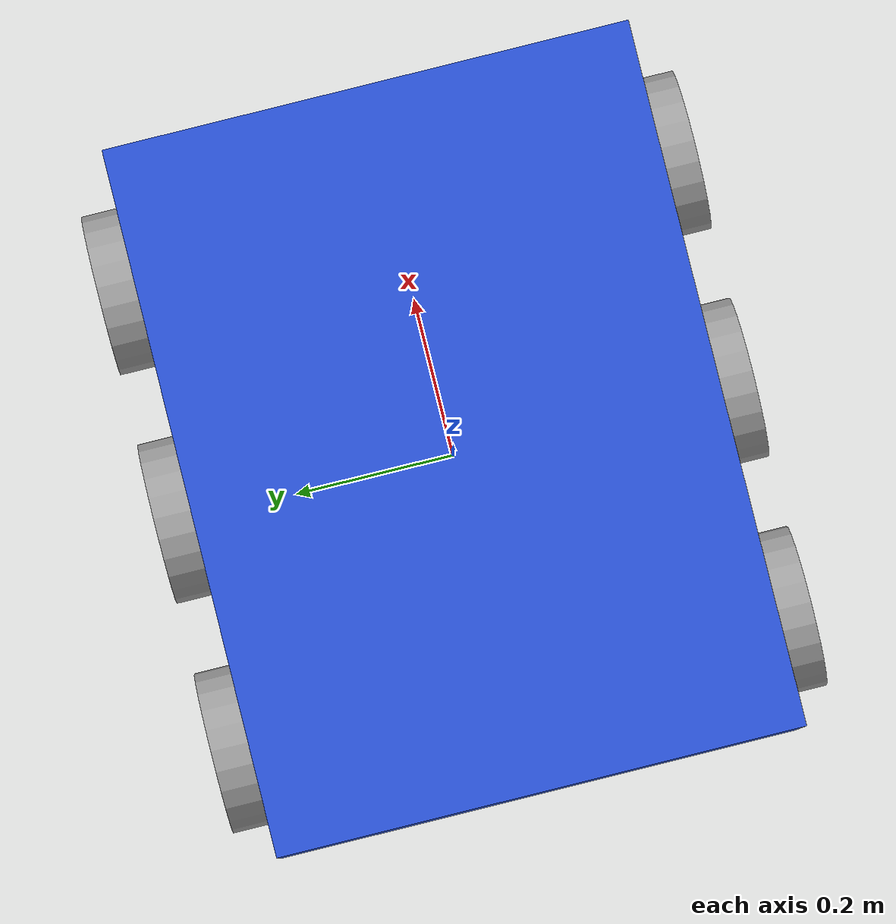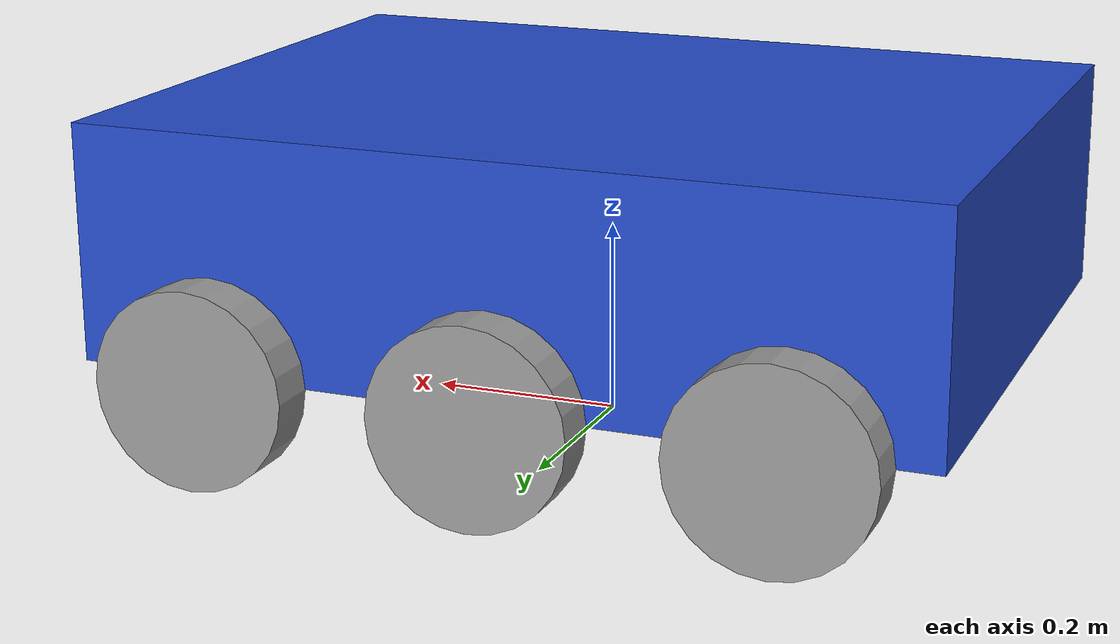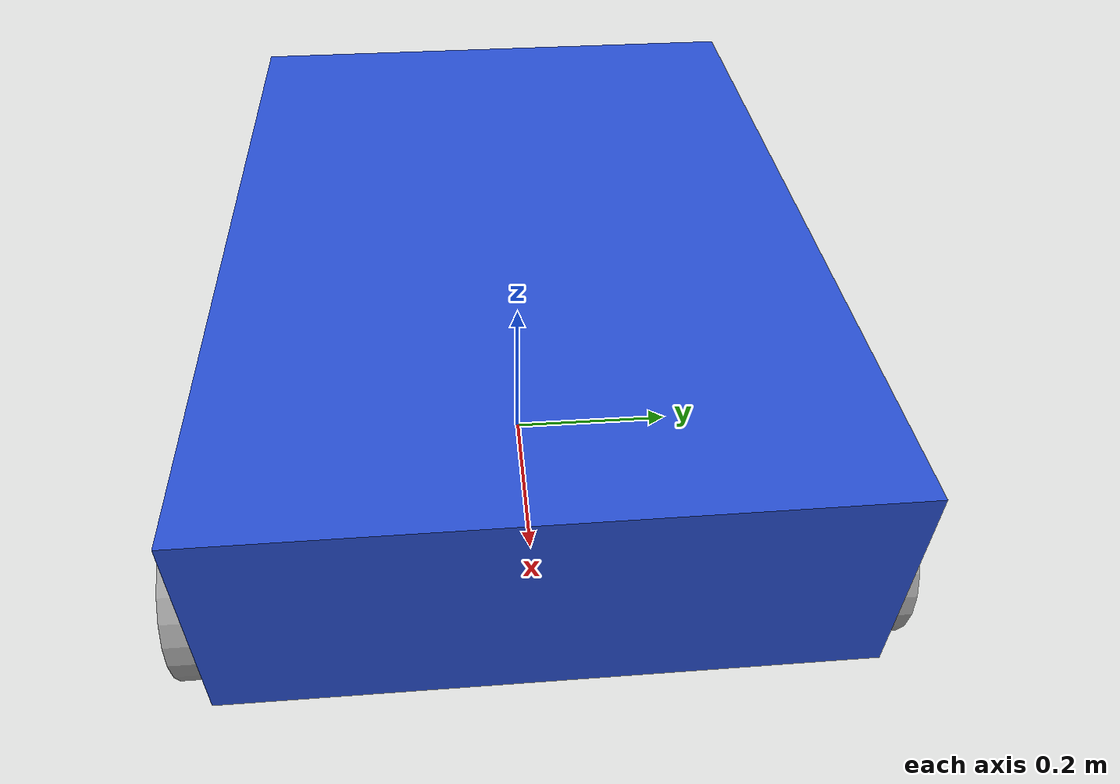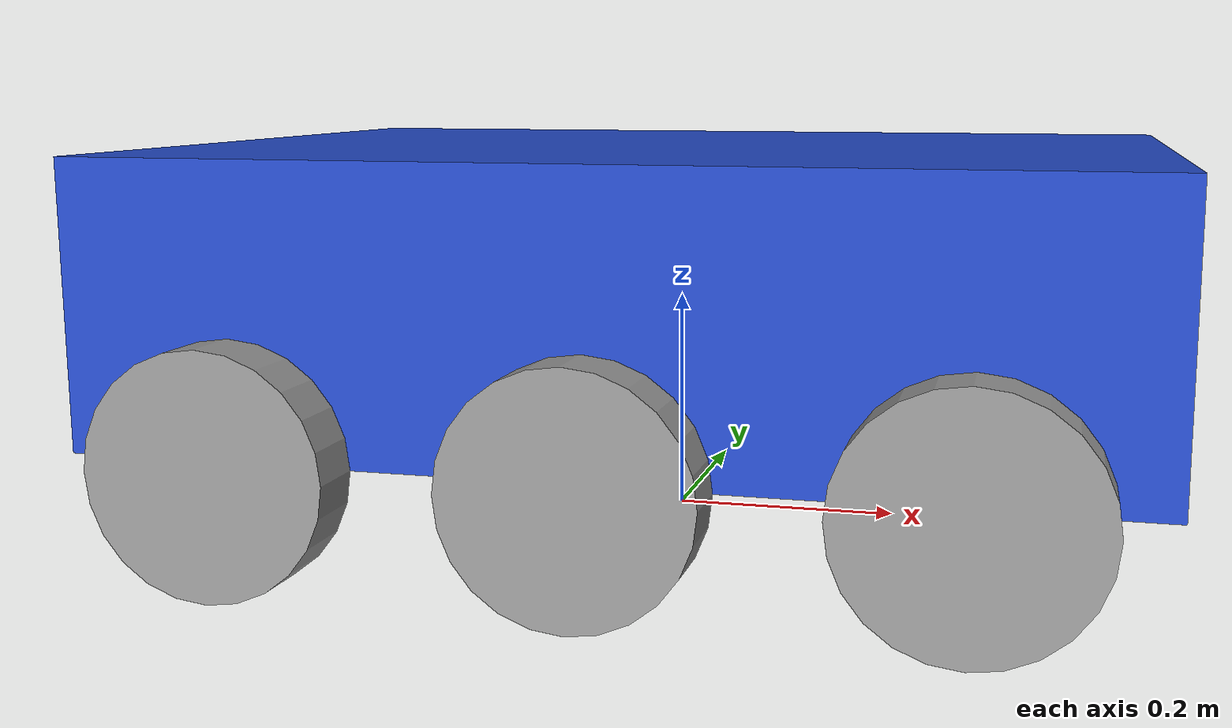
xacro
<?xml version="1.0"?>
<robot xmlns:xacro="http://www.ros.org/wiki/xacro">

    <xacro:property name="base_length" value="0.865" />
    <xacro:property name="base_width" value="0.645" />
    <xacro:property name="base_height" value="0.24" />
    <xacro:property name="wheel_radius" value="0.1" />
    <xacro:property name="wheel_length" value="0.05" />

    <link name="base_footprint" />

    <link name="base_link">
        <visual>
            <geometry>
                <box size="${base_length} ${base_width} ${base_height}" />
            </geometry>
            <origin xyz="0 0 ${base_height / 2.0}" rpy="0 0 0" />
            <material name="blue" />
        </visual>
        <collision>
            <geometry>
                <box size="${base_length} ${base_width} ${base_height}" />
            </geometry>
            <origin xyz="0 0 ${base_height / 2.0}" rpy="0 0 0" />
        </collision>
        <inertial>
            <mass value="40.0"/>
            <inertia ixx="1.579" ixy="0.0" ixz="0.0" iyy="3.881" iyz="0.0" izz="2.686"/>
        </inertial>
    </link>

    <xacro:macro name="wheel_link" params="prefix">
        <link name="${prefix}_wheel_link">
            <visual>
                <geometry>
                    <cylinder radius="${wheel_radius}" length="${wheel_length}" />
                </geometry>
                <origin xyz="0 0 0" rpy="${pi / 2.0} 0 0" />
                <material name="grey" />
            </visual>
            <collision>
                <geometry>
                    <cylinder radius="${wheel_radius}" length="${wheel_length}" />
                </geometry>
                <origin xyz="0 0 0" rpy="${pi / 2.0} 0 0" />
            </collision>
            <inertial>
                <mass value="0.2"/>
                <inertia ixx="0.0001" ixy="0" ixz="0" iyy="0.0001" iyz="0" izz="0.0001"/>
            </inertial>
        </link>
    </xacro:macro>

    <xacro:wheel_link prefix="front_right" />
    <xacro:wheel_link prefix="middle_right" />
    <xacro:wheel_link prefix="back_right" />
    <xacro:wheel_link prefix="front_left" />
    <xacro:wheel_link prefix="middle_left" />
    <xacro:wheel_link prefix="back_left" />

    <gazebo reference="base_link">
        <mu1>0.8</mu1>
        <mu2>0.8</mu2>
        <kp>100000.0</kp>
        <kd>1000.0</kd>
    </gazebo>

    <xacro:macro name="wheel_gazebo_props" params="prefix">
        <gazebo reference="${prefix}_wheel_link">
            <mu1>1.0</mu1>
            <mu2>1.0</mu2>
            <kp>100000.0</kp>
            <kd>1000.0</kd>
        </gazebo>
    </xacro:macro>
    <xacro:wheel_gazebo_props prefix="front_right" />
    <xacro:wheel_gazebo_props prefix="middle_right" />
    <xacro:wheel_gazebo_props prefix="back_right" />
    <xacro:wheel_gazebo_props prefix="front_left" />
    <xacro:wheel_gazebo_props prefix="middle_left" />
    <xacro:wheel_gazebo_props prefix="back_left" />

    <joint name="base_joint" type="fixed">
        <parent link="base_footprint" />
        <child link="base_link" />
        <origin xyz="0 0 ${wheel_radius}" rpy="0 0 0"/>
    </joint>

    <joint name="base_front_right_wheel_joint" type="continuous">
        <parent link="base_link" />
        <child link="front_right_wheel_link" />
	<origin xyz="${base_length / 3.0} ${-(base_width + wheel_length) / 2.0} 0" rpy="0 0 0" />
        <axis xyz="0 1 0" />
    </joint>

    <joint name="base_middle_right_wheel_joint" type="continuous">
        <parent link="base_link" />
        <child link="middle_right_wheel_link" />
	<origin xyz="0 ${-(base_width + wheel_length) / 2.0} 0" rpy="0 0 0" />
        <axis xyz="0 1 0" />
    </joint>

    <joint name="base_back_right_wheel_joint" type="continuous">
        <parent link="base_link" />
        <child link="back_right_wheel_link" />
	<origin xyz="${-base_length / 3.0} ${-(base_width + wheel_length) / 2.0} 0" rpy="0 0 0" />
        <axis xyz="0 1 0" />
    </joint>

    <joint name="base_front_left_wheel_joint" type="continuous">
        <parent link="base_link" />
        <child link="front_left_wheel_link" />
	<origin xyz="${base_length / 3.0} ${(base_width + wheel_length) / 2.0} 0" rpy="0 0 0" />
        <axis xyz="0 1 0" />
    </joint>

    <joint name="base_middle_left_wheel_joint" type="continuous">
        <parent link="base_link" />
        <child link="middle_left_wheel_link" />
	<origin xyz="0 ${(base_width + wheel_length) / 2.0} 0" rpy="0 0 0" />
        <axis xyz="0 1 0" />
    </joint>

    <joint name="base_back_left_wheel_joint" type="continuous">
        <parent link="base_link" />
        <child link="back_left_wheel_link" />
	<origin xyz="${-base_length / 3.0} ${(base_width + wheel_length) / 2.0} 0" rpy="0 0 0" />
        <axis xyz="0 1 0" />
    </joint>

</robot>
